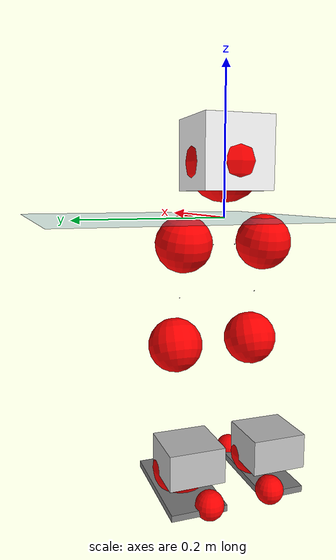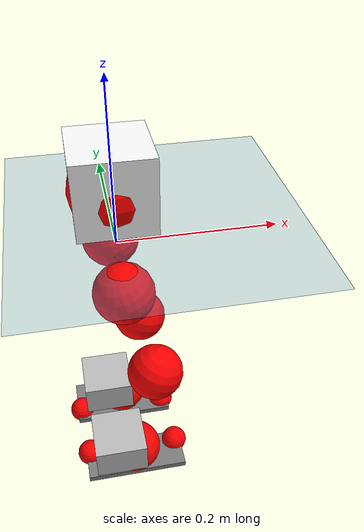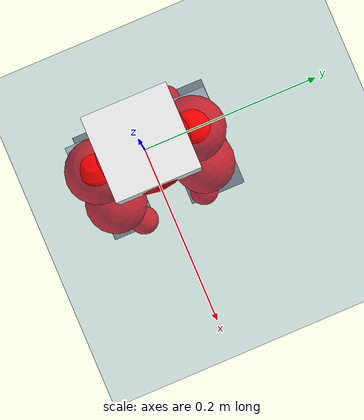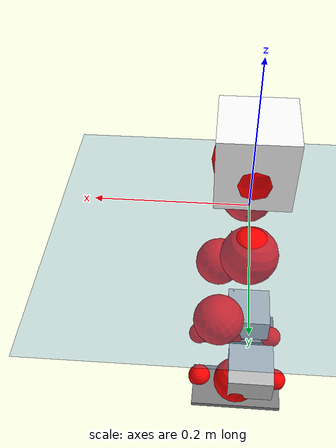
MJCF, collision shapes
<mujoco model="pi_12dof_release_v1">
  <compiler angle="radian" assetdir="assets" balanceinertia="true" inertiafromgeom="false"/>

  <option timestep="0.005" density="1.2" viscosity="2e-05"/>

  <size nkey="1"/>

  <visual>
    <quality shadowsize="8192"/>
    <map shadowclip="0.5"/>
  </visual>

  <default>
    <default class="/">
      <joint armature="0.01" damping="0.01" frictionloss="0.01"/>
      <geom contype="0" conaffinity="0" group="1" solref="-1000 -80"/>
      <site size="0.01 0.005 0.005" group="5"/>
      <general forcelimited="true" biastype="affine" gainprm="20" biasprm="0 -20 -0.5"/>
      <default class="foot">
        <geom size="0.0845 0.036 0.005" type="box" condim="6" group="4" priority="1" friction="0.9 0.2 0.2" solimp="0.015 1 0.005"/>
      </default>
      <default class="reward_collision_sphere">
        <geom group="5" rgba="1 0 0 1"/>
      </default>
    </default>
  </default>

  <asset>
    <texture type="skybox" colorspace="auto" name="//unnamed_texture_0" builtin="gradient" rgb1="0.95 0.95 0.95" rgb2="0.95 0.95 0.95" width="100" height="600"/>
    <texture type="2d" colorspace="auto" name="texplane" builtin="checker" rgb1="0.345 0.575 0.748" rgb2="0.345 0.575 0.748" markrgb="1 1 1" width="512" height="512"/>
    <material name="MatPlane" class="/" texture="texplane" texuniform="true" texrepeat="2 2" specular="0.9"/>
    <mesh name="baselink_1" class="/" file="baselink_1.STL"/>
    <mesh name="r_hip_pitch_link" class="/" file="r_hip_pitch_link.STL"/>
    <mesh name="r_hip_roll_link" class="/" file="r_hip_roll_link.STL"/>
    <mesh name="r_thigh_link" class="/" file="r_thigh_link.STL"/>
    <mesh name="r_calf_link" class="/" file="r_calf_link.STL"/>
    <mesh name="r_ankle_pitch_link" class="/" file="r_ankle_pitch_link.STL"/>
    <mesh name="r_ankle_roll_link" class="/" file="r_ankle_roll_link.STL"/>
    <mesh name="l_hip_pitch_link" class="/" file="l_hip_pitch_link.STL"/>
    <mesh name="l_hip_roll_link" class="/" file="l_hip_roll_link.STL"/>
    <mesh name="l_thigh_link" class="/" file="l_thigh_link.STL"/>
    <mesh name="l_calf_link" class="/" file="l_calf_link.STL"/>
    <mesh name="l_ankle_pitch_link" class="/" file="l_ankle_pitch_link.STL"/>
    <mesh name="l_ankle_roll_link" class="/" file="l_ankle_roll_link.STL"/>
  </asset>

  <worldbody>
    <geom name="floor" class="/" size="100 100 0.125" type="plane" group="0" material="MatPlane"/>
    <light name="toplight_shadow" class="/" pos="0 0 5" dir="0.0990148 0.0990148 -0.990148" type="directional" ambient="0.04 0.04 0.04" diffuse="0.55 0.55 0.55" specular="0.12 0.12 0.12"/>
    <light name="toplight_fill" class="/" pos="0 0 5" dir="0.0990148 0.0990148 -0.990148" type="directional" castshadow="false" ambient="0.04 0.04 0.04" diffuse="0.3 0.3 0.3" specular="0.08 0.08 0.08"/>
    <body name="trunk" pos="-0.00106972 0.00034157 -0.00213053" quat="0.999999 0.000293538 0.000462348 -0.00110361">
      <inertial pos="0.000422122 0.00193581 0.0422303" quat="0.701375 0.00668859 0.000234074 0.712761" mass="1.71864" diaginertia="0.00813967 0.0028167 0.00534787"/>
      <joint name="//unnamed_joint_0" type="free"/>
      <geom name="//unnamed_geom_1" class="/" type="mesh" density="0" rgba="1 1 1 1" mesh="baselink_1"/>
      <geom name="//unnamed_geom_2" class="/" size="0.0465247 0.0465247 0.0465247" pos="0 0 0.083762" type="box" rgba="1 1 1 1"/>
      <geom name="//unnamed_geom_3" class="reward_collision_sphere" size="0.0511772" pos="0 0 0.0732917"/>
      <site name="imu" class="/" pos="-0.0040095 0.0118962 -0.0140933" size="0.00930495"/>
      <camera name="track" class="/" pos="0 -1.5749 0" quat="0.707107 0.707107 0 0" mode="trackcom"/>
      <camera name="ego_camera" class="/" pos="0.0717758 0 0.188464" quat="-0.5 -0.5 0.5 0.5"/>
      <body name="r_hip_pitch_link" pos="0.00246188 -0.0165045 -0.0328295" quat="0.992199 2.00328e-05 -0.124668 9.58544e-06">
        <inertial pos="-0.00171201 -0.0437288 -0.00232318" quat="-0.0192129 0.713797 -0.0275654 0.699546" mass="0.290053" diaginertia="8.75659e-05 2.87843e-05 0.000101441"/>
        <joint name="r_hip_pitch_joint" class="/" pos="0 0 0" axis="-0.00014848 -0.999999 -0.00138548" range="-1.7619 1.25134" armature="0.00966535" damping="0.00718363" frictionloss="0.0088472"/>
        <geom name="//unnamed_geom_4" class="/" type="mesh" density="0" rgba="0.75294 0.75294 0.75294 1" mesh="r_hip_pitch_link"/>
        <geom name="//unnamed_geom_5" class="/" size="0.000465247 0.000465247 0.000465247" type="box" rgba="0.75294 0.75294 0.75294 1"/>
        <body name="r_hip_roll_link" pos="-0.00143669 -0.0412117 0.00253413" quat="1 0.000260369 8.19241e-05 0.000164872">
          <inertial pos="-0.0031715 -0.000345011 -0.0631995" quat="0.705769 -0.0801097 -0.0843844 0.698822" mass="0.300699" diaginertia="0.000256958 8.14761e-05 0.000150659"/>
          <joint name="r_hip_roll_joint" class="/" pos="0 0 0" axis="-0.999905 -0.0138148 -0.000313555" stiffness="0.000557448" range="-0.126851 0.49547" armature="0.0084052" damping="0.0110161" frictionloss="0.0104584"/>
          <geom name="//unnamed_geom_6" class="/" type="mesh" density="0" rgba="0.75294 0.75294 0.75294 1" mesh="r_hip_roll_link"/>
          <geom name="//unnamed_geom_7" class="/" size="0.000465247 0.000465247 0.000465247" type="box" rgba="0.75294 0.75294 0.75294 1"/>
          <geom name="//unnamed_geom_8" class="reward_collision_sphere" size="0.0372198"/>
          <body name="r_thigh_link" pos="0.000793623 0.0017213 -0.0729881" quat="1 0.000129994 0.000132648 -0.000270055">
            <inertial pos="-0.00135755 -0.001574 -0.0503869" quat="0.738025 0.674773 0.000394519 0.000586142" mass="0.0913821" diaginertia="9.713e-05 2.8311e-05 7.2516e-05"/>
            <joint name="r_thigh_joint" class="/" pos="0 0 0" axis="-0.00454547 0.0003912 -0.99999" stiffness="0.00646522" range="-0.341092 0.647601" armature="0.00849765" damping="0.018746" frictionloss="0.00974717"/>
            <geom name="//unnamed_geom_9" class="/" type="mesh" density="0" rgba="0.75294 0.75294 0.75294 1" mesh="r_thigh_link"/>
            <geom name="//unnamed_geom_10" class="/" size="0.000465247 0.000465247 0.000465247" type="box" rgba="0.75294 0.75294 0.75294 1"/>
            <body name="r_calf_link" pos="-0.00229946 -0.00213339 -0.0730459" quat="0.947342 -1.19888e-05 0.320225 0.000196916">
              <inertial pos="-0.00196199 -0.000525325 -0.072753" quat="0.999947 0.00241523 -0.00845171 0.00543613" mass="0.669403" diaginertia="0.00278259 0.00104988 0.00021578"/>
              <joint name="r_calf_joint" class="/" pos="0 0 0" axis="-6.72778e-05 -1 0.000872303" range="-1.65772 0.690432" armature="0.00927505" damping="0.00905101" frictionloss="0.00889199"/>
              <geom name="//unnamed_geom_11" class="/" type="mesh" density="0" rgba="0.75294 0.75294 0.75294 1" mesh="r_calf_link"/>
              <geom name="//unnamed_geom_12" class="/" size="0.000465247 0.000465247 0.000465247" type="box" rgba="0.75294 0.75294 0.75294 1"/>
              <geom name="//unnamed_geom_13" class="reward_collision_sphere" size="0.0372198"/>
              <body name="r_ankle_pitch_link" pos="0.00180995 -0.000691949 -0.149023" quat="0.980061 0.000857383 -0.198696 0.000217306">
                <inertial pos="0.00279649 0.00322521 -0.000918927" quat="0.00223008 0.707282 -0.00210761 0.706925" mass="0.147182" diaginertia="0.000247579 6.49982e-05 0.000154094"/>
                <joint name="r_ankle_pitch_joint" class="/" pos="0 0 0" axis="0.0110872 -0.99993 -0.00410914" range="-1.34217 0.499678" armature="0.00884171" damping="0.0182342" frictionloss="0.00883743"/>
                <geom name="//unnamed_geom_14" class="/" type="mesh" density="0" rgba="0.75294 0.75294 0.75294 1" mesh="r_ankle_pitch_link"/>
                <geom name="//unnamed_geom_15" class="/" size="0.0362893 0.0372198 0.0232624" type="box" rgba="0.75294 0.75294 0.75294 1"/>
                <body name="r_ankle_roll_link" pos="0.0713145 0.00267824 0.000569944" quat="1 0.000116131 -0.000225497 0.000226062">
                  <inertial pos="-0.0229648 -0.00243016 -0.0125173" quat="0.566714 0.431693 0.429824 0.554732" mass="0.409754" diaginertia="0.000885832 0.000312571 0.000334105"/>
                  <joint name="r_ankle_roll_joint" class="/" pos="0 0 0" axis="-0.999998 4.53505e-05 0.00190432" stiffness="0.000823032" range="-0.185772 0.199991" armature="0.00807315" damping="0" frictionloss="0.00817505"/>
                  <geom name="//unnamed_geom_16" class="/" type="mesh" density="0" rgba="0.75294 0.75294 0.75294 1" mesh="r_ankle_roll_link"/>
                  <geom name="//unnamed_geom_17" class="/" type="mesh" rgba="0.75294 0.75294 0.75294 1" mesh="r_ankle_roll_link"/>
                  <geom name="right_foot" class="foot" size="0.0720685 0.0295369 0.00422517" pos="-0.0488075 0 -0.0460691"/>
                  <geom name="//unnamed_geom_19" class="reward_collision_sphere" size="0.0372198" pos="-0.0478505 0 -0.0209405"/>
                  <geom name="//unnamed_geom_20" class="reward_collision_sphere" size="0.0186099" pos="0.0143552 0.015749 -0.041881"/>
                  <geom name="//unnamed_geom_21" class="reward_collision_sphere" size="0.0186099" pos="-0.114841 0.015749 -0.041881"/>
                  <site name="right_foot" class="foot" pos="-0.0488075 0 -0.0460691" size="0.00930495"/>
                </body>
              </body>
            </body>
          </body>
        </body>
      </body>
      <body name="l_hip_pitch_link" pos="-0.00118948 0.0157646 -0.0319658" quat="0.992182 -5.33957e-07 -0.124801 -8.13176e-05">
        <inertial pos="-0.000442027 0.0398547 -0.00185362" quat="-0.0334508 0.705324 0.0319588 0.707374" mass="0.308601" diaginertia="9.76874e-05 3.1352e-05 0.000118663"/>
        <joint name="l_hip_pitch_joint" class="/" pos="0 0 0" axis="0.00430142 0.999894 -0.0139396" range="-1.29068 1.7124" armature="0.00923299" damping="0" frictionloss="0.0102878"/>
        <geom name="//unnamed_geom_22" class="/" type="mesh" density="0" rgba="0.75294 0.75294 0.75294 1" mesh="l_hip_pitch_link"/>
        <geom name="//unnamed_geom_23" class="/" size="0.000465247 0.000465247 0.000465247" type="box" rgba="0.75294 0.75294 0.75294 1"/>
        <body name="l_hip_roll_link" pos="-0.000297726 0.0413234 0.00186913" quat="0.999999 -3.09322e-05 0.000694337 -0.00112977">
          <inertial pos="0.00021978 -0.00287022 -0.0657636" quat="0.699341 -0.0751796 -0.0774589 0.706591" mass="0.320463" diaginertia="0.000281221 8.46036e-05 0.000170551"/>
          <joint name="l_hip_roll_joint" class="/" pos="0 0 0" axis="-1 -3.50774e-05 -0.000198648" stiffness="0.00191826" range="-0.499388 0.0670161" armature="0.00813079" damping="0.0175278" frictionloss="0.00925861"/>
          <geom name="//unnamed_geom_24" class="/" type="mesh" density="0" rgba="0.75294 0.75294 0.75294 1" mesh="l_hip_roll_link"/>
          <geom name="//unnamed_geom_25" class="/" size="0.000465247 0.000465247 0.000465247" type="box" rgba="0.75294 0.75294 0.75294 1"/>
          <geom name="//unnamed_geom_26" class="reward_collision_sphere" size="0.0372198"/>
          <body name="l_thigh_link" pos="-0.00294844 8.42735e-07 -0.0743158" quat="0.999999 0.00132433 -7.95211e-05 0.000356116">
            <inertial pos="-0.00176798 0.000927214 -0.0518851" quat="0.683131 0.730258 0.00693146 -0.00258859" mass="0.0873062" diaginertia="9.64585e-05 2.69691e-05 7.16199e-05"/>
            <joint name="l_thigh_joint" class="/" pos="0 0 0" axis="-0.00020885 -2.51965e-05 -1" stiffness="0.00271865" range="-0.598839 0.324173" armature="0.00936147" damping="0" frictionloss="0.0102256"/>
            <geom name="//unnamed_geom_27" class="/" type="mesh" density="0" rgba="0.75294 0.75294 0.75294 1" mesh="l_thigh_link"/>
            <geom name="//unnamed_geom_28" class="/" size="0.000465247 0.000465247 0.000465247" type="box" rgba="0.75294 0.75294 0.75294 1"/>
            <body name="l_calf_link" pos="0.000602118 -0.00021828 -0.0713631" quat="0.947642 0.00030736 0.319334 6.72063e-05">
              <inertial pos="-0.00260661 -0.000332886 -0.0730072" quat="0.999913 -0.000293392 0.0120662 0.0053558" mass="0.659476" diaginertia="0.00298795 0.00109253 0.000231455"/>
              <joint name="l_calf_joint" class="/" pos="0 0 0" axis="0.0126819 0.999914 0.00333587" range="-0.704122 1.70266" armature="0.00921819" damping="0" frictionloss="0.0105211"/>
              <geom name="//unnamed_geom_29" class="/" type="mesh" density="0" rgba="0.75294 0.75294 0.75294 1" mesh="l_calf_link"/>
              <geom name="//unnamed_geom_30" class="/" size="0.000465247 0.000465247 0.000465247" type="box" rgba="0.75294 0.75294 0.75294 1"/>
              <geom name="//unnamed_geom_31" class="reward_collision_sphere" size="0.0372198"/>
              <body name="l_ankle_pitch_link" pos="0.000717416 0.00160736 -0.148248" quat="0.980106 -0.000522066 -0.198474 -9.51132e-05">
                <inertial pos="0.00652795 -0.00328364 -0.0026046" quat="0.00852355 0.709502 0.00920733 0.704592" mass="0.137763" diaginertia="0.000254285 6.64032e-05 0.000149291"/>
                <joint name="l_ankle_pitch_joint" class="/" pos="0 0 0" axis="0.000738488 1 0.000224392" stiffness="0.0113673" range="-0.560876 1.28471" armature="0.0085296" damping="0.00170219" frictionloss="0.00799364"/>
                <geom name="//unnamed_geom_32" class="/" type="mesh" density="0" rgba="0.75294 0.75294 0.75294 1" mesh="l_ankle_pitch_link"/>
                <geom name="//unnamed_geom_33" class="/" size="0.0362893 0.0372198 0.0232624" type="box" rgba="0.75294 0.75294 0.75294 1"/>
                <body name="l_ankle_roll_link" pos="0.0699216 0.00328913 -0.00246499" quat="1 0.000483646 -0.000661839 -8.59971e-05">
                  <inertial pos="-0.0230057 -0.000244582 -0.0155621" quat="0.552132 0.428866 0.443941 0.560482" mass="0.434979" diaginertia="0.000948101 0.000330388 0.000356232"/>
                  <joint name="l_ankle_roll_joint" class="/" pos="0 0 0" axis="-1 -0.000451522 0.000293717" range="-0.168899 0.118344" armature="0.00899545" damping="0" frictionloss="0.00842692"/>
                  <geom name="//unnamed_geom_34" class="/" type="mesh" density="0" rgba="0.75294 0.75294 0.75294 1" mesh="l_ankle_roll_link"/>
                  <geom name="//unnamed_geom_35" class="/" type="mesh" rgba="0.75294 0.75294 0.75294 1" mesh="l_ankle_roll_link"/>
                  <geom name="left_foot" class="foot" size="0.0730562 0.0368053 0.00409875" pos="-0.0488075 0 -0.0460691"/>
                  <geom name="//unnamed_geom_37" class="reward_collision_sphere" size="0.0372198" pos="-0.0478505 0 -0.0209405"/>
                  <geom name="//unnamed_geom_38" class="reward_collision_sphere" size="0.0186099" pos="0.0143552 -0.015749 -0.041881"/>
                  <geom name="//unnamed_geom_39" class="reward_collision_sphere" size="0.0186099" pos="-0.114841 -0.015749 -0.041881"/>
                  <site name="left_foot" class="foot" pos="-0.0488075 0 -0.0460691" size="0.00930495"/>
                </body>
              </body>
            </body>
          </body>
        </body>
      </body>
    </body>
  </worldbody>

  <contact>
    <pair class="/" geom1="floor" geom2="right_foot" name="//unnamed_contact_1"/>
    <pair class="/" geom1="floor" geom2="left_foot" name="//unnamed_contact_0"/>
  </contact>

  <actuator>
    <general name="r_hip_pitch_joint" class="/" joint="r_hip_pitch_joint" forcerange="-21.5675 21.5675" gainprm="17.8747" biasprm="0 -17.8747 -0.436487"/>
    <general name="r_hip_roll_joint" class="/" joint="r_hip_roll_joint" forcerange="-18.1774 18.1774" gainprm="17.8747" biasprm="0 -17.8747 -0.436487"/>
    <general name="r_thigh_joint" class="/" joint="r_thigh_joint" forcerange="-19.3205 19.3205" gainprm="17.8747" biasprm="0 -17.8747 -0.436487"/>
    <general name="r_calf_joint" class="/" joint="r_calf_joint" forcerange="-20.7573 20.7573" gainprm="17.8747" biasprm="0 -17.8747 -0.436487"/>
    <general name="r_ankle_pitch_joint" class="/" joint="r_ankle_pitch_joint" forcerange="-18.3781 18.3781" gainprm="17.8747" biasprm="0 -17.8747 -0.436487"/>
    <general name="r_ankle_roll_joint" class="/" joint="r_ankle_roll_joint" forcerange="-18.1087 18.1087" gainprm="17.8747" biasprm="0 -17.8747 -0.436487"/>
    <general name="l_hip_pitch_joint" class="/" joint="l_hip_pitch_joint" forcerange="-19.223 19.223" gainprm="17.8747" biasprm="0 -17.8747 -0.436487"/>
    <general name="l_hip_roll_joint" class="/" joint="l_hip_roll_joint" forcerange="-18.9266 18.9266" gainprm="17.8747" biasprm="0 -17.8747 -0.436487"/>
    <general name="l_thigh_joint" class="/" joint="l_thigh_joint" forcerange="-21.2198 21.2198" gainprm="17.8747" biasprm="0 -17.8747 -0.436487"/>
    <general name="l_calf_joint" class="/" joint="l_calf_joint" forcerange="-20.2505 20.2505" gainprm="17.8747" biasprm="0 -17.8747 -0.436487"/>
    <general name="l_ankle_pitch_joint" class="/" joint="l_ankle_pitch_joint" forcerange="-21.0972 21.0972" gainprm="17.8747" biasprm="0 -17.8747 -0.436487"/>
    <general name="l_ankle_roll_joint" class="/" joint="l_ankle_roll_joint" forcerange="-19.1188 19.1188" gainprm="17.8747" biasprm="0 -17.8747 -0.436487"/>
  </actuator>

  <sensor>
    <gyro site="imu" name="imu_angular_velocity"/>
    <velocimeter site="imu" name="imu_linear_velocity"/>
    <framelinvel objtype="site" objname="left_foot" name="left_foot_global_linear_velocity"/>
    <framelinvel objtype="site" objname="right_foot" name="right_foot_global_linear_velocity"/>
  </sensor>

  <keyframe>
    <key name="home" qpos="0 0 0.291 1 0 0 0 0.4 0 0 -0.8 0.4 0 -0.4 0 0 0.8 -0.4 0"/>
  </keyframe>
</mujoco>
